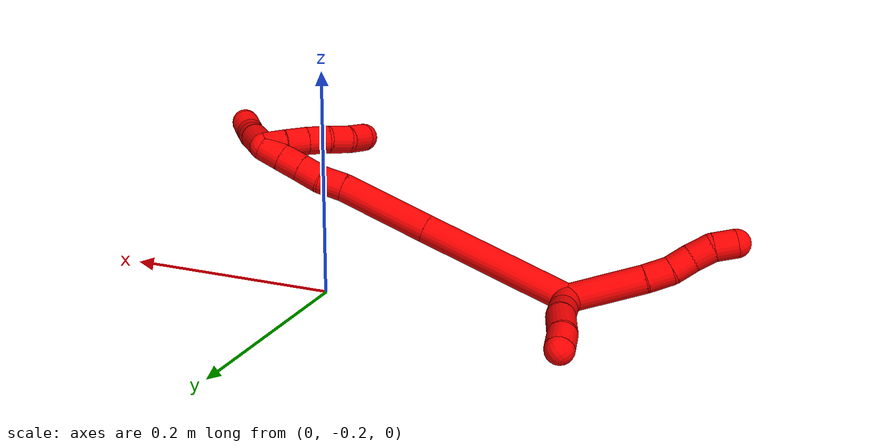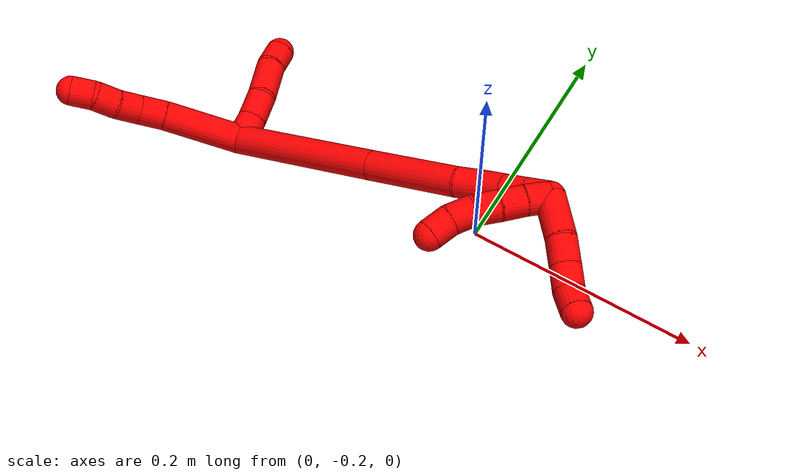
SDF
<sdf version="1.7">
 <world name="default">
  <model name="2">
   <static>0</static>
   <link name="2">
    <collision name="collision-cylinder-e_1_2_8">
     <pose>-0.029289 0.011577 0.012165 -0.760609 -1.05019 0.455183</pose>
     <geometry><cylinder><radius>0.0125</radius><length>0.067524</length></cylinder></geometry>
     <surface>
      <friction><ode><mu>1.16</mu><mu2>1.16</mu2><slip1>0</slip1><slip2>0</slip2></ode></friction>
      <contact><ode><kp>1e+06</kp><kd>1</kd><max_vel>0</max_vel><min_depth>0.001</min_depth></ode></contact>
     </surface>
    </collision>
    <visual name="visual-cylinder-e_1_2_8">
     <pose>-0.029289 0.011577 0.012165 -0.760609 -1.05019 0.455183</pose>
     <geometry><cylinder><radius>0.0125</radius><length>0.067524</length></cylinder></geometry>
     <material><ambient>1 0 0 1</ambient></material>
    </visual>
    <collision name="collision-cylinder-e_2_8_9">
     <pose>-0.06812 0.027986 0.027651 -0.96885 -1.01978 0.572415</pose>
     <geometry><cylinder><radius>0.0125</radius><length>0.022398</length></cylinder></geometry>
     <surface>
      <friction><ode><mu>1.16</mu><mu2>1.16</mu2><slip1>0</slip1><slip2>0</slip2></ode></friction>
      <contact><ode><kp>1e+06</kp><kd>1</kd><max_vel>0</max_vel><min_depth>0.001</min_depth></ode></contact>
     </surface>
    </collision>
    <visual name="visual-cylinder-e_2_8_9">
     <pose>-0.06812 0.027986 0.027651 -0.96885 -1.01978 0.572415</pose>
     <geometry><cylinder><radius>0.0125</radius><length>0.022398</length></cylinder></geometry>
     <material><ambient>1 0 0 1</ambient></material>
    </visual>
    <collision name="collision-cylinder-e_3_9_10">
     <pose>-0.086486 0.037547 0.031623 -1.43382 -1.07493 0.958204</pose>
     <geometry><cylinder><radius>0.0125</radius><length>0.020065</length></cylinder></geometry>
     <surface>
      <friction><ode><mu>1.16</mu><mu2>1.16</mu2><slip1>0</slip1><slip2>0</slip2></ode></friction>
      <contact><ode><kp>1e+06</kp><kd>1</kd><max_vel>0</max_vel><min_depth>0.001</min_depth></ode></contact>
     </surface>
    </collision>
    <visual name="visual-cylinder-e_3_9_10">
     <pose>-0.086486 0.037547 0.031623 -1.43382 -1.07493 0.958204</pose>
     <geometry><cylinder><radius>0.0125</radius><length>0.020065</length></cylinder></geometry>
     <material><ambient>1 0 0 1</ambient></material>
    </visual>
    <collision name="collision-cylinder-e_4_10_11">
     <pose>-0.104617 0.045625 0.033745 -1.15698 -1.19633 0.837359</pose>
     <geometry><cylinder><radius>0.0125</radius><length>0.020001</length></cylinder></geometry>
     <surface>
      <friction><ode><mu>1.16</mu><mu2>1.16</mu2><slip1>0</slip1><slip2>0</slip2></ode></friction>
      <contact><ode><kp>1e+06</kp><kd>1</kd><max_vel>0</max_vel><min_depth>0.001</min_depth></ode></contact>
     </surface>
    </collision>
    <visual name="visual-cylinder-e_4_10_11">
     <pose>-0.104617 0.045625 0.033745 -1.15698 -1.19633 0.837359</pose>
     <geometry><cylinder><radius>0.0125</radius><length>0.020001</length></cylinder></geometry>
     <material><ambient>1 0 0 1</ambient></material>
    </visual>
    <collision name="collision-cylinder-e_5_11_6">
     <pose>-0.121972 0.05302 0.039574 -0.748154 -0.934484 0.391035</pose>
     <geometry><cylinder><radius>0.0125</radius><length>0.020012</length></cylinder></geometry>
     <surface>
      <friction><ode><mu>1.16</mu><mu2>1.16</mu2><slip1>0</slip1><slip2>0</slip2></ode></friction>
      <contact><ode><kp>1e+06</kp><kd>1</kd><max_vel>0</max_vel><min_depth>0.001</min_depth></ode></contact>
     </surface>
    </collision>
    <visual name="visual-cylinder-e_5_11_6">
     <pose>-0.121972 0.05302 0.039574 -0.748154 -0.934484 0.391035</pose>
     <geometry><cylinder><radius>0.0125</radius><length>0.020012</length></cylinder></geometry>
     <material><ambient>1 0 0 1</ambient></material>
    </visual>
    <collision name="collision-cylinder-e_1_2_12">
     <pose>-0.00035 -0.010885 0.002594 1.33686 -0.031223 -0.024658</pose>
     <geometry><cylinder><radius>0.0125</radius><length>0.022391</length></cylinder></geometry>
     <surface>
      <friction><ode><mu>1.16</mu><mu2>1.16</mu2><slip1>0</slip1><slip2>0</slip2></ode></friction>
      <contact><ode><kp>1e+06</kp><kd>1</kd><max_vel>0</max_vel><min_depth>0.001</min_depth></ode></contact>
     </surface>
    </collision>
    <visual name="visual-cylinder-e_1_2_12">
     <pose>-0.00035 -0.010885 0.002594 1.33686 -0.031223 -0.024658</pose>
     <geometry><cylinder><radius>0.0125</radius><length>0.022391</length></cylinder></geometry>
     <material><ambient>1 0 0 1</ambient></material>
    </visual>
    <collision name="collision-cylinder-e_2_12_13">
     <pose>-0.003046 -0.033478 0.006916 1.42423 -0.195789 -0.169145</pose>
     <geometry><cylinder><radius>0.0125</radius><length>0.024129</length></cylinder></geometry>
     <surface>
      <friction><ode><mu>1.16</mu><mu2>1.16</mu2><slip1>0</slip1><slip2>0</slip2></ode></friction>
      <contact><ode><kp>1e+06</kp><kd>1</kd><max_vel>0</max_vel><min_depth>0.001</min_depth></ode></contact>
     </surface>
    </collision>
    <visual name="visual-cylinder-e_2_12_13">
     <pose>-0.003046 -0.033478 0.006916 1.42423 -0.195789 -0.169145</pose>
     <geometry><cylinder><radius>0.0125</radius><length>0.024129</length></cylinder></geometry>
     <material><ambient>1 0 0 1</ambient></material>
    </visual>
    <collision name="collision-cylinder-e_3_13_14">
     <pose>-0.008241 -0.060317 0.014646 1.19321 -0.1732 -0.11779</pose>
     <geometry><cylinder><radius>0.0125</radius><length>0.033051</length></cylinder></geometry>
     <surface>
      <friction><ode><mu>1.16</mu><mu2>1.16</mu2><slip1>0</slip1><slip2>0</slip2></ode></friction>
      <contact><ode><kp>1e+06</kp><kd>1</kd><max_vel>0</max_vel><min_depth>0.001</min_depth></ode></contact>
     </surface>
    </collision>
    <visual name="visual-cylinder-e_3_13_14">
     <pose>-0.008241 -0.060317 0.014646 1.19321 -0.1732 -0.11779</pose>
     <geometry><cylinder><radius>0.0125</radius><length>0.033051</length></cylinder></geometry>
     <material><ambient>1 0 0 1</ambient></material>
    </visual>
    <collision name="collision-cylinder-e_4_14_5">
     <pose>-0.010498 -0.084853 0.024588 1.174 0.057932 0.038544</pose>
     <geometry><cylinder><radius>0.0125</radius><length>0.020428</length></cylinder></geometry>
     <surface>
      <friction><ode><mu>1.16</mu><mu2>1.16</mu2><slip1>0</slip1><slip2>0</slip2></ode></friction>
      <contact><ode><kp>1e+06</kp><kd>1</kd><max_vel>0</max_vel><min_depth>0.001</min_depth></ode></contact>
     </surface>
    </collision>
    <visual name="visual-cylinder-e_4_14_5">
     <pose>-0.010498 -0.084853 0.024588 1.174 0.057932 0.038544</pose>
     <geometry><cylinder><radius>0.0125</radius><length>0.020428</length></cylinder></geometry>
     <material><ambient>1 0 0 1</ambient></material>
    </visual>
    <collision name="collision-cylinder-e_1_2_15">
     <pose>0.030487 -0.010421 -0.0598 2.96906 0.465449 2.44186</pose>
     <geometry><cylinder><radius>0.0125</radius><length>0.135854</length></cylinder></geometry>
     <surface>
      <friction><ode><mu>1.16</mu><mu2>1.16</mu2><slip1>0</slip1><slip2>0</slip2></ode></friction>
      <contact><ode><kp>1e+06</kp><kd>1</kd><max_vel>0</max_vel><min_depth>0.001</min_depth></ode></contact>
     </surface>
    </collision>
    <visual name="visual-cylinder-e_1_2_15">
     <pose>0.030487 -0.010421 -0.0598 2.96906 0.465449 2.44186</pose>
     <geometry><cylinder><radius>0.0125</radius><length>0.135854</length></cylinder></geometry>
     <material><ambient>1 0 0 1</ambient></material>
    </visual>
    <collision name="collision-cylinder-e_2_15_16">
     <pose>0.079 -0.027093 -0.155692 2.97012 0.457303 2.43404</pose>
     <geometry><cylinder><radius>0.0125</radius><length>0.081649</length></cylinder></geometry>
     <surface>
      <friction><ode><mu>1.16</mu><mu2>1.16</mu2><slip1>0</slip1><slip2>0</slip2></ode></friction>
      <contact><ode><kp>1e+06</kp><kd>1</kd><max_vel>0</max_vel><min_depth>0.001</min_depth></ode></contact>
     </surface>
    </collision>
    <visual name="visual-cylinder-e_2_15_16">
     <pose>0.079 -0.027093 -0.155692 2.97012 0.457303 2.43404</pose>
     <geometry><cylinder><radius>0.0125</radius><length>0.081649</length></cylinder></geometry>
     <material><ambient>1 0 0 1</ambient></material>
    </visual>
    <collision name="collision-cylinder-e_3_16_17">
     <pose>0.102786 -0.03629 -0.200801 2.82565 0.545743 2.10664</pose>
     <geometry><cylinder><radius>0.0125</radius><length>0.022196</length></cylinder></geometry>
     <surface>
      <friction><ode><mu>1.16</mu><mu2>1.16</mu2><slip1>0</slip1><slip2>0</slip2></ode></friction>
      <contact><ode><kp>1e+06</kp><kd>1</kd><max_vel>0</max_vel><min_depth>0.001</min_depth></ode></contact>
     </surface>
    </collision>
    <visual name="visual-cylinder-e_3_16_17">
     <pose>0.102786 -0.03629 -0.200801 2.82565 0.545743 2.10664</pose>
     <geometry><cylinder><radius>0.0125</radius><length>0.022196</length></cylinder></geometry>
     <material><ambient>1 0 0 1</ambient></material>
    </visual>
    <collision name="collision-cylinder-e_4_17_18">
     <pose>0.112505 -0.040586 -0.219022 2.9961 0.402359 2.45521</pose>
     <geometry><cylinder><radius>0.0125</radius><length>0.02022</length></cylinder></geometry>
     <surface>
      <friction><ode><mu>1.16</mu><mu2>1.16</mu2><slip1>0</slip1><slip2>0</slip2></ode></friction>
      <contact><ode><kp>1e+06</kp><kd>1</kd><max_vel>0</max_vel><min_depth>0.001</min_depth></ode></contact>
     </surface>
    </collision>
    <visual name="visual-cylinder-e_4_17_18">
     <pose>0.112505 -0.040586 -0.219022 2.9961 0.402359 2.45521</pose>
     <geometry><cylinder><radius>0.0125</radius><length>0.02022</length></cylinder></geometry>
     <material><ambient>1 0 0 1</ambient></material>
    </visual>
    <collision name="collision-cylinder-e_5_18_19">
     <pose>0.120439 -0.043445 -0.237304 2.9768 0.40778 2.3816</pose>
     <geometry><cylinder><radius>0.0125</radius><length>0.020048</length></cylinder></geometry>
     <surface>
      <friction><ode><mu>1.16</mu><mu2>1.16</mu2><slip1>0</slip1><slip2>0</slip2></ode></friction>
      <contact><ode><kp>1e+06</kp><kd>1</kd><max_vel>0</max_vel><min_depth>0.001</min_depth></ode></contact>
     </surface>
    </collision>
    <visual name="visual-cylinder-e_5_18_19">
     <pose>0.120439 -0.043445 -0.237304 2.9768 0.40778 2.3816</pose>
     <geometry><cylinder><radius>0.0125</radius><length>0.020048</length></cylinder></geometry>
     <material><ambient>1 0 0 1</ambient></material>
    </visual>
    <collision name="collision-cylinder-e_6_19_1">
     <pose>0.128333 -0.046492 -0.25547 2.97404 0.40194 2.35962</pose>
     <geometry><cylinder><radius>0.0125</radius><length>0.020032</length></cylinder></geometry>
     <surface>
      <friction><ode><mu>1.16</mu><mu2>1.16</mu2><slip1>0</slip1><slip2>0</slip2></ode></friction>
      <contact><ode><kp>1e+06</kp><kd>1</kd><max_vel>0</max_vel><min_depth>0.001</min_depth></ode></contact>
     </surface>
    </collision>
    <visual name="visual-cylinder-e_6_19_1">
     <pose>0.128333 -0.046492 -0.25547 2.97404 0.40194 2.35962</pose>
     <geometry><cylinder><radius>0.0125</radius><length>0.020032</length></cylinder></geometry>
     <material><ambient>1 0 0 1</ambient></material>
    </visual>
    <collision name="collision-cylinder-e_1_1_20">
     <pose>0.140817 -0.034866 -0.27409 -2.19753 0.485081 -0.902542</pose>
     <geometry><cylinder><radius>0.0125</radius><length>0.036741</length></cylinder></geometry>
     <surface>
      <friction><ode><mu>1.16</mu><mu2>1.16</mu2><slip1>0</slip1><slip2>0</slip2></ode></friction>
      <contact><ode><kp>1e+06</kp><kd>1</kd><max_vel>0</max_vel><min_depth>0.001</min_depth></ode></contact>
     </surface>
    </collision>
    <visual name="visual-cylinder-e_1_1_20">
     <pose>0.140817 -0.034866 -0.27409 -2.19753 0.485081 -0.902542</pose>
     <geometry><cylinder><radius>0.0125</radius><length>0.036741</length></cylinder></geometry>
     <material><ambient>1 0 0 1</ambient></material>
    </visual>
    <collision name="collision-cylinder-e_2_20_21">
     <pose>0.155197 -0.012904 -0.287938 -2.02684 0.535359 -0.829039</pose>
     <geometry><cylinder><radius>0.0125</radius><length>0.022793</length></cylinder></geometry>
     <surface>
      <friction><ode><mu>1.16</mu><mu2>1.16</mu2><slip1>0</slip1><slip2>0</slip2></ode></friction>
      <contact><ode><kp>1e+06</kp><kd>1</kd><max_vel>0</max_vel><min_depth>0.001</min_depth></ode></contact>
     </surface>
    </collision>
    <visual name="visual-cylinder-e_2_20_21">
     <pose>0.155197 -0.012904 -0.287938 -2.02684 0.535359 -0.829039</pose>
     <geometry><cylinder><radius>0.0125</radius><length>0.022793</length></cylinder></geometry>
     <material><ambient>1 0 0 1</ambient></material>
    </visual>
    <collision name="collision-cylinder-e_3_21_22">
     <pose>0.165589 0.003918 -0.296574 -2.06474 0.465736 -0.755966</pose>
     <geometry><cylinder><radius>0.0125</radius><length>0.020392</length></cylinder></geometry>
     <surface>
      <friction><ode><mu>1.16</mu><mu2>1.16</mu2><slip1>0</slip1><slip2>0</slip2></ode></friction>
      <contact><ode><kp>1e+06</kp><kd>1</kd><max_vel>0</max_vel><min_depth>0.001</min_depth></ode></contact>
     </surface>
    </collision>
    <visual name="visual-cylinder-e_3_21_22">
     <pose>0.165589 0.003918 -0.296574 -2.06474 0.465736 -0.755966</pose>
     <geometry><cylinder><radius>0.0125</radius><length>0.020392</length></cylinder></geometry>
     <material><ambient>1 0 0 1</ambient></material>
    </visual>
    <collision name="collision-cylinder-e_4_22_4">
     <pose>0.17325 0.018421 -0.307909 -2.39566 0.312123 -0.764659</pose>
     <geometry><cylinder><radius>0.0125</radius><length>0.020075</length></cylinder></geometry>
     <surface>
      <friction><ode><mu>1.16</mu><mu2>1.16</mu2><slip1>0</slip1><slip2>0</slip2></ode></friction>
      <contact><ode><kp>1e+06</kp><kd>1</kd><max_vel>0</max_vel><min_depth>0.001</min_depth></ode></contact>
     </surface>
    </collision>
    <visual name="visual-cylinder-e_4_22_4">
     <pose>0.17325 0.018421 -0.307909 -2.39566 0.312123 -0.764659</pose>
     <geometry><cylinder><radius>0.0125</radius><length>0.020075</length></cylinder></geometry>
     <material><ambient>1 0 0 1</ambient></material>
    </visual>
    <collision name="collision-cylinder-e_1_1_23">
     <pose>0.126081 -0.041108 -0.260814 -1.07483 -0.665018 0.405915</pose>
     <geometry><cylinder><radius>0.0125</radius><length>0.02</length></cylinder></geometry>
     <surface>
      <friction><ode><mu>1.16</mu><mu2>1.16</mu2><slip1>0</slip1><slip2>0</slip2></ode></friction>
      <contact><ode><kp>1e+06</kp><kd>1</kd><max_vel>0</max_vel><min_depth>0.001</min_depth></ode></contact>
     </surface>
    </collision>
    <visual name="visual-cylinder-e_1_1_23">
     <pose>0.126081 -0.041108 -0.260814 -1.07483 -0.665018 0.405915</pose>
     <geometry><cylinder><radius>0.0125</radius><length>0.02</length></cylinder></geometry>
     <material><ambient>1 0 0 1</ambient></material>
    </visual>
    <collision name="collision-cylinder-e_2_23_24">
     <pose>0.114275 -0.026843 -0.253285 -1.09494 -0.598552 0.371848</pose>
     <geometry><cylinder><radius>0.0125</radius><length>0.02</length></cylinder></geometry>
     <surface>
      <friction><ode><mu>1.16</mu><mu2>1.16</mu2><slip1>0</slip1><slip2>0</slip2></ode></friction>
      <contact><ode><kp>1e+06</kp><kd>1</kd><max_vel>0</max_vel><min_depth>0.001</min_depth></ode></contact>
     </surface>
    </collision>
    <visual name="visual-cylinder-e_2_23_24">
     <pose>0.114275 -0.026843 -0.253285 -1.09494 -0.598552 0.371848</pose>
     <geometry><cylinder><radius>0.0125</radius><length>0.02</length></cylinder></geometry>
     <material><ambient>1 0 0 1</ambient></material>
    </visual>
    <collision name="collision-cylinder-e_3_24_25">
     <pose>0.102955 -0.01252 -0.245147 -1.01317 -0.604764 0.342793</pose>
     <geometry><cylinder><radius>0.0125</radius><length>0.02</length></cylinder></geometry>
     <surface>
      <friction><ode><mu>1.16</mu><mu2>1.16</mu2><slip1>0</slip1><slip2>0</slip2></ode></friction>
      <contact><ode><kp>1e+06</kp><kd>1</kd><max_vel>0</max_vel><min_depth>0.001</min_depth></ode></contact>
     </surface>
    </collision>
    <visual name="visual-cylinder-e_3_24_25">
     <pose>0.102955 -0.01252 -0.245147 -1.01317 -0.604764 0.342793</pose>
     <geometry><cylinder><radius>0.0125</radius><length>0.02</length></cylinder></geometry>
     <material><ambient>1 0 0 1</ambient></material>
    </visual>
    <collision name="collision-cylinder-e_4_25_26">
     <pose>0.09328 0.002665 -0.236699 -1.10782 -0.410431 0.256067</pose>
     <geometry><cylinder><radius>0.0125</radius><length>0.02</length></cylinder></geometry>
     <surface>
      <friction><ode><mu>1.16</mu><mu2>1.16</mu2><slip1>0</slip1><slip2>0</slip2></ode></friction>
      <contact><ode><kp>1e+06</kp><kd>1</kd><max_vel>0</max_vel><min_depth>0.001</min_depth></ode></contact>
     </surface>
    </collision>
    <visual name="visual-cylinder-e_4_25_26">
     <pose>0.09328 0.002665 -0.236699 -1.10782 -0.410431 0.256067</pose>
     <geometry><cylinder><radius>0.0125</radius><length>0.02</length></cylinder></geometry>
     <material><ambient>1 0 0 1</ambient></material>
    </visual>
    <collision name="collision-cylinder-e_5_26_3">
     <pose>0.086805 0.020349 -0.230612 -1.36373 -0.251055 0.20416</pose>
     <geometry><cylinder><radius>0.0125</radius><length>0.02</length></cylinder></geometry>
     <surface>
      <friction><ode><mu>1.16</mu><mu2>1.16</mu2><slip1>0</slip1><slip2>0</slip2></ode></friction>
      <contact><ode><kp>1e+06</kp><kd>1</kd><max_vel>0</max_vel><min_depth>0.001</min_depth></ode></contact>
     </surface>
    </collision>
    <visual name="visual-cylinder-e_5_26_3">
     <pose>0.086805 0.020349 -0.230612 -1.36373 -0.251055 0.20416</pose>
     <geometry><cylinder><radius>0.0125</radius><length>0.02</length></cylinder></geometry>
     <material><ambient>1 0 0 1</ambient></material>
    </visual>
    <collision name="collision-sphere-3">
     <pose>0.084321 0.029828 -0.22862 0 -0 0</pose>
     <geometry><sphere><radius>0.0125</radius></sphere></geometry>
     <surface>
      <friction><ode><mu>1.16</mu><mu2>1.16</mu2><slip1>0</slip1><slip2>0</slip2></ode></friction>
      <contact><ode><kp>1e+06</kp><kd>1</kd><max_vel>0</max_vel><min_depth>0.001</min_depth></ode></contact>
     </surface>
    </collision>
    <visual name="visual-sphere-3">
     <pose>0.084321 0.029828 -0.22862 0 -0 0</pose>
     <geometry><sphere><radius>0.0125</radius></sphere></geometry>
     <material><ambient>1 0 0 1</ambient></material>
    </visual>
    <collision name="collision-sphere-26">
     <pose>0.089289 0.010869 -0.232603 0 -0 0</pose>
     <geometry><sphere><radius>0.0125</radius></sphere></geometry>
     <surface>
      <friction><ode><mu>1.16</mu><mu2>1.16</mu2><slip1>0</slip1><slip2>0</slip2></ode></friction>
      <contact><ode><kp>1e+06</kp><kd>1</kd><max_vel>0</max_vel><min_depth>0.001</min_depth></ode></contact>
     </surface>
    </collision>
    <visual name="visual-sphere-26">
     <pose>0.089289 0.010869 -0.232603 0 -0 0</pose>
     <geometry><sphere><radius>0.0125</radius></sphere></geometry>
     <material><ambient>1 0 0 1</ambient></material>
    </visual>
    <collision name="collision-sphere-25">
     <pose>0.09727 -0.005539 -0.240794 0 -0 0</pose>
     <geometry><sphere><radius>0.0125</radius></sphere></geometry>
     <surface>
      <friction><ode><mu>1.16</mu><mu2>1.16</mu2><slip1>0</slip1><slip2>0</slip2></ode></friction>
      <contact><ode><kp>1e+06</kp><kd>1</kd><max_vel>0</max_vel><min_depth>0.001</min_depth></ode></contact>
     </surface>
    </collision>
    <visual name="visual-sphere-25">
     <pose>0.09727 -0.005539 -0.240794 0 -0 0</pose>
     <geometry><sphere><radius>0.0125</radius></sphere></geometry>
     <material><ambient>1 0 0 1</ambient></material>
    </visual>
    <collision name="collision-sphere-24">
     <pose>0.108641 -0.0195 -0.2495 0 -0 0</pose>
     <geometry><sphere><radius>0.0125</radius></sphere></geometry>
     <surface>
      <friction><ode><mu>1.16</mu><mu2>1.16</mu2><slip1>0</slip1><slip2>0</slip2></ode></friction>
      <contact><ode><kp>1e+06</kp><kd>1</kd><max_vel>0</max_vel><min_depth>0.001</min_depth></ode></contact>
     </surface>
    </collision>
    <visual name="visual-sphere-24">
     <pose>0.108641 -0.0195 -0.2495 0 -0 0</pose>
     <geometry><sphere><radius>0.0125</radius></sphere></geometry>
     <material><ambient>1 0 0 1</ambient></material>
    </visual>
    <collision name="collision-sphere-23">
     <pose>0.11991 -0.034187 -0.257069 0 -0 0</pose>
     <geometry><sphere><radius>0.0125</radius></sphere></geometry>
     <surface>
      <friction><ode><mu>1.16</mu><mu2>1.16</mu2><slip1>0</slip1><slip2>0</slip2></ode></friction>
      <contact><ode><kp>1e+06</kp><kd>1</kd><max_vel>0</max_vel><min_depth>0.001</min_depth></ode></contact>
     </surface>
    </collision>
    <visual name="visual-sphere-23">
     <pose>0.11991 -0.034187 -0.257069 0 -0 0</pose>
     <geometry><sphere><radius>0.0125</radius></sphere></geometry>
     <material><ambient>1 0 0 1</ambient></material>
    </visual>
    <collision name="collision-sphere-4">
     <pose>0.176333 0.024904 -0.314925 0 -0 0</pose>
     <geometry><sphere><radius>0.0125</radius></sphere></geometry>
     <surface>
      <friction><ode><mu>1.16</mu><mu2>1.16</mu2><slip1>0</slip1><slip2>0</slip2></ode></friction>
      <contact><ode><kp>1e+06</kp><kd>1</kd><max_vel>0</max_vel><min_depth>0.001</min_depth></ode></contact>
     </surface>
    </collision>
    <visual name="visual-sphere-4">
     <pose>0.176333 0.024904 -0.314925 0 -0 0</pose>
     <geometry><sphere><radius>0.0125</radius></sphere></geometry>
     <material><ambient>1 0 0 1</ambient></material>
    </visual>
    <collision name="collision-sphere-22">
     <pose>0.170168 0.011938 -0.300893 0 -0 0</pose>
     <geometry><sphere><radius>0.0125</radius></sphere></geometry>
     <surface>
      <friction><ode><mu>1.16</mu><mu2>1.16</mu2><slip1>0</slip1><slip2>0</slip2></ode></friction>
      <contact><ode><kp>1e+06</kp><kd>1</kd><max_vel>0</max_vel><min_depth>0.001</min_depth></ode></contact>
     </surface>
    </collision>
    <visual name="visual-sphere-22">
     <pose>0.170168 0.011938 -0.300893 0 -0 0</pose>
     <geometry><sphere><radius>0.0125</radius></sphere></geometry>
     <material><ambient>1 0 0 1</ambient></material>
    </visual>
    <collision name="collision-sphere-21">
     <pose>0.161011 -0.004103 -0.292255 0 -0 0</pose>
     <geometry><sphere><radius>0.0125</radius></sphere></geometry>
     <surface>
      <friction><ode><mu>1.16</mu><mu2>1.16</mu2><slip1>0</slip1><slip2>0</slip2></ode></friction>
      <contact><ode><kp>1e+06</kp><kd>1</kd><max_vel>0</max_vel><min_depth>0.001</min_depth></ode></contact>
     </surface>
    </collision>
    <visual name="visual-sphere-21">
     <pose>0.161011 -0.004103 -0.292255 0 -0 0</pose>
     <geometry><sphere><radius>0.0125</radius></sphere></geometry>
     <material><ambient>1 0 0 1</ambient></material>
    </visual>
    <collision name="collision-sphere-20">
     <pose>0.149383 -0.021704 -0.283622 0 -0 0</pose>
     <geometry><sphere><radius>0.0125</radius></sphere></geometry>
     <surface>
      <friction><ode><mu>1.16</mu><mu2>1.16</mu2><slip1>0</slip1><slip2>0</slip2></ode></friction>
      <contact><ode><kp>1e+06</kp><kd>1</kd><max_vel>0</max_vel><min_depth>0.001</min_depth></ode></contact>
     </surface>
    </collision>
    <visual name="visual-sphere-20">
     <pose>0.149383 -0.021704 -0.283622 0 -0 0</pose>
     <geometry><sphere><radius>0.0125</radius></sphere></geometry>
     <material><ambient>1 0 0 1</ambient></material>
    </visual>
    <collision name="collision-sphere-6">
     <pose>-0.13002 0.057064 0.043932 0 -0 0</pose>
     <geometry><sphere><radius>0.0125</radius></sphere></geometry>
     <surface>
      <friction><ode><mu>1.16</mu><mu2>1.16</mu2><slip1>0</slip1><slip2>0</slip2></ode></friction>
      <contact><ode><kp>1e+06</kp><kd>1</kd><max_vel>0</max_vel><min_depth>0.001</min_depth></ode></contact>
     </surface>
    </collision>
    <visual name="visual-sphere-6">
     <pose>-0.13002 0.057064 0.043932 0 -0 0</pose>
     <geometry><sphere><radius>0.0125</radius></sphere></geometry>
     <material><ambient>1 0 0 1</ambient></material>
    </visual>
    <collision name="collision-sphere-11">
     <pose>-0.113925 0.048975 0.035216 0 -0 0</pose>
     <geometry><sphere><radius>0.0125</radius></sphere></geometry>
     <surface>
      <friction><ode><mu>1.16</mu><mu2>1.16</mu2><slip1>0</slip1><slip2>0</slip2></ode></friction>
      <contact><ode><kp>1e+06</kp><kd>1</kd><max_vel>0</max_vel><min_depth>0.001</min_depth></ode></contact>
     </surface>
    </collision>
    <visual name="visual-sphere-11">
     <pose>-0.113925 0.048975 0.035216 0 -0 0</pose>
     <geometry><sphere><radius>0.0125</radius></sphere></geometry>
     <material><ambient>1 0 0 1</ambient></material>
    </visual>
    <collision name="collision-sphere-10">
     <pose>-0.09531 0.042276 0.032274 0 -0 0</pose>
     <geometry><sphere><radius>0.0125</radius></sphere></geometry>
     <surface>
      <friction><ode><mu>1.16</mu><mu2>1.16</mu2><slip1>0</slip1><slip2>0</slip2></ode></friction>
      <contact><ode><kp>1e+06</kp><kd>1</kd><max_vel>0</max_vel><min_depth>0.001</min_depth></ode></contact>
     </surface>
    </collision>
    <visual name="visual-sphere-10">
     <pose>-0.09531 0.042276 0.032274 0 -0 0</pose>
     <geometry><sphere><radius>0.0125</radius></sphere></geometry>
     <material><ambient>1 0 0 1</ambient></material>
    </visual>
    <collision name="collision-sphere-9">
     <pose>-0.077661 0.032819 0.030971 0 -0 0</pose>
     <geometry><sphere><radius>0.0125</radius></sphere></geometry>
     <surface>
      <friction><ode><mu>1.16</mu><mu2>1.16</mu2><slip1>0</slip1><slip2>0</slip2></ode></friction>
      <contact><ode><kp>1e+06</kp><kd>1</kd><max_vel>0</max_vel><min_depth>0.001</min_depth></ode></contact>
     </surface>
    </collision>
    <visual name="visual-sphere-9">
     <pose>-0.077661 0.032819 0.030971 0 -0 0</pose>
     <geometry><sphere><radius>0.0125</radius></sphere></geometry>
     <material><ambient>1 0 0 1</ambient></material>
    </visual>
    <collision name="collision-sphere-2">
     <geometry><sphere><radius>0.0125</radius></sphere></geometry>
     <surface>
      <friction><ode><mu>1.16</mu><mu2>1.16</mu2><slip1>0</slip1><slip2>0</slip2></ode></friction>
      <contact><ode><kp>1e+06</kp><kd>1</kd><max_vel>0</max_vel><min_depth>0.001</min_depth></ode></contact>
     </surface>
    </collision>
    <visual name="visual-sphere-2">
     <geometry><sphere><radius>0.0125</radius></sphere></geometry>
     <material><ambient>1 0 0 1</ambient></material>
    </visual>
    <collision name="collision-sphere-19">
     <pose>0.124415 -0.044954 -0.246381 0 -0 0</pose>
     <geometry><sphere><radius>0.0125</radius></sphere></geometry>
     <surface>
      <friction><ode><mu>1.16</mu><mu2>1.16</mu2><slip1>0</slip1><slip2>0</slip2></ode></friction>
      <contact><ode><kp>1e+06</kp><kd>1</kd><max_vel>0</max_vel><min_depth>0.001</min_depth></ode></contact>
     </surface>
    </collision>
    <visual name="visual-sphere-19">
     <pose>0.124415 -0.044954 -0.246381 0 -0 0</pose>
     <geometry><sphere><radius>0.0125</radius></sphere></geometry>
     <material><ambient>1 0 0 1</ambient></material>
    </visual>
    <collision name="collision-sphere-8">
     <pose>-0.058578 0.023153 0.02433 0 -0 0</pose>
     <geometry><sphere><radius>0.0125</radius></sphere></geometry>
     <surface>
      <friction><ode><mu>1.16</mu><mu2>1.16</mu2><slip1>0</slip1><slip2>0</slip2></ode></friction>
      <contact><ode><kp>1e+06</kp><kd>1</kd><max_vel>0</max_vel><min_depth>0.001</min_depth></ode></contact>
     </surface>
    </collision>
    <visual name="visual-sphere-8">
     <pose>-0.058578 0.023153 0.02433 0 -0 0</pose>
     <geometry><sphere><radius>0.0125</radius></sphere></geometry>
     <material><ambient>1 0 0 1</ambient></material>
    </visual>
    <collision name="collision-sphere-12">
     <pose>-0.000699 -0.02177 0.005188 0 -0 0</pose>
     <geometry><sphere><radius>0.0125</radius></sphere></geometry>
     <surface>
      <friction><ode><mu>1.16</mu><mu2>1.16</mu2><slip1>0</slip1><slip2>0</slip2></ode></friction>
      <contact><ode><kp>1e+06</kp><kd>1</kd><max_vel>0</max_vel><min_depth>0.001</min_depth></ode></contact>
     </surface>
    </collision>
    <visual name="visual-sphere-12">
     <pose>-0.000699 -0.02177 0.005188 0 -0 0</pose>
     <geometry><sphere><radius>0.0125</radius></sphere></geometry>
     <material><ambient>1 0 0 1</ambient></material>
    </visual>
    <collision name="collision-sphere-13">
     <pose>-0.005393 -0.045185 0.008644 0 -0 0</pose>
     <geometry><sphere><radius>0.0125</radius></sphere></geometry>
     <surface>
      <friction><ode><mu>1.16</mu><mu2>1.16</mu2><slip1>0</slip1><slip2>0</slip2></ode></friction>
      <contact><ode><kp>1e+06</kp><kd>1</kd><max_vel>0</max_vel><min_depth>0.001</min_depth></ode></contact>
     </surface>
    </collision>
    <visual name="visual-sphere-13">
     <pose>-0.005393 -0.045185 0.008644 0 -0 0</pose>
     <geometry><sphere><radius>0.0125</radius></sphere></geometry>
     <material><ambient>1 0 0 1</ambient></material>
    </visual>
    <collision name="collision-sphere-14">
     <pose>-0.011089 -0.075448 0.020648 0 -0 0</pose>
     <geometry><sphere><radius>0.0125</radius></sphere></geometry>
     <surface>
      <friction><ode><mu>1.16</mu><mu2>1.16</mu2><slip1>0</slip1><slip2>0</slip2></ode></friction>
      <contact><ode><kp>1e+06</kp><kd>1</kd><max_vel>0</max_vel><min_depth>0.001</min_depth></ode></contact>
     </surface>
    </collision>
    <visual name="visual-sphere-14">
     <pose>-0.011089 -0.075448 0.020648 0 -0 0</pose>
     <geometry><sphere><radius>0.0125</radius></sphere></geometry>
     <material><ambient>1 0 0 1</ambient></material>
    </visual>
    <collision name="collision-sphere-5">
     <pose>-0.009906 -0.094258 0.028529 0 -0 0</pose>
     <geometry><sphere><radius>0.0125</radius></sphere></geometry>
     <surface>
      <friction><ode><mu>1.16</mu><mu2>1.16</mu2><slip1>0</slip1><slip2>0</slip2></ode></friction>
      <contact><ode><kp>1e+06</kp><kd>1</kd><max_vel>0</max_vel><min_depth>0.001</min_depth></ode></contact>
     </surface>
    </collision>
    <visual name="visual-sphere-5">
     <pose>-0.009906 -0.094258 0.028529 0 -0 0</pose>
     <geometry><sphere><radius>0.0125</radius></sphere></geometry>
     <material><ambient>1 0 0 1</ambient></material>
    </visual>
    <collision name="collision-sphere-15">
     <pose>0.060975 -0.020843 -0.1196 0 -0 0</pose>
     <geometry><sphere><radius>0.0125</radius></sphere></geometry>
     <surface>
      <friction><ode><mu>1.16</mu><mu2>1.16</mu2><slip1>0</slip1><slip2>0</slip2></ode></friction>
      <contact><ode><kp>1e+06</kp><kd>1</kd><max_vel>0</max_vel><min_depth>0.001</min_depth></ode></contact>
     </surface>
    </collision>
    <visual name="visual-sphere-15">
     <pose>0.060975 -0.020843 -0.1196 0 -0 0</pose>
     <geometry><sphere><radius>0.0125</radius></sphere></geometry>
     <material><ambient>1 0 0 1</ambient></material>
    </visual>
    <collision name="collision-sphere-16">
     <pose>0.097025 -0.033343 -0.191785 0 -0 0</pose>
     <geometry><sphere><radius>0.0125</radius></sphere></geometry>
     <surface>
      <friction><ode><mu>1.16</mu><mu2>1.16</mu2><slip1>0</slip1><slip2>0</slip2></ode></friction>
      <contact><ode><kp>1e+06</kp><kd>1</kd><max_vel>0</max_vel><min_depth>0.001</min_depth></ode></contact>
     </surface>
    </collision>
    <visual name="visual-sphere-16">
     <pose>0.097025 -0.033343 -0.191785 0 -0 0</pose>
     <geometry><sphere><radius>0.0125</radius></sphere></geometry>
     <material><ambient>1 0 0 1</ambient></material>
    </visual>
    <collision name="collision-sphere-17">
     <pose>0.108546 -0.039238 -0.209817 0 -0 0</pose>
     <geometry><sphere><radius>0.0125</radius></sphere></geometry>
     <surface>
      <friction><ode><mu>1.16</mu><mu2>1.16</mu2><slip1>0</slip1><slip2>0</slip2></ode></friction>
      <contact><ode><kp>1e+06</kp><kd>1</kd><max_vel>0</max_vel><min_depth>0.001</min_depth></ode></contact>
     </surface>
    </collision>
    <visual name="visual-sphere-17">
     <pose>0.108546 -0.039238 -0.209817 0 -0 0</pose>
     <geometry><sphere><radius>0.0125</radius></sphere></geometry>
     <material><ambient>1 0 0 1</ambient></material>
    </visual>
    <collision name="collision-sphere-18">
     <pose>0.116464 -0.041935 -0.228226 0 -0 0</pose>
     <geometry><sphere><radius>0.0125</radius></sphere></geometry>
     <surface>
      <friction><ode><mu>1.16</mu><mu2>1.16</mu2><slip1>0</slip1><slip2>0</slip2></ode></friction>
      <contact><ode><kp>1e+06</kp><kd>1</kd><max_vel>0</max_vel><min_depth>0.001</min_depth></ode></contact>
     </surface>
    </collision>
    <visual name="visual-sphere-18">
     <pose>0.116464 -0.041935 -0.228226 0 -0 0</pose>
     <geometry><sphere><radius>0.0125</radius></sphere></geometry>
     <material><ambient>1 0 0 1</ambient></material>
    </visual>
    <collision name="collision-sphere-1">
     <pose>0.132251 -0.048029 -0.264559 0 -0 0</pose>
     <geometry><sphere><radius>0.0125</radius></sphere></geometry>
     <surface>
      <friction><ode><mu>1.16</mu><mu2>1.16</mu2><slip1>0</slip1><slip2>0</slip2></ode></friction>
      <contact><ode><kp>1e+06</kp><kd>1</kd><max_vel>0</max_vel><min_depth>0.001</min_depth></ode></contact>
     </surface>
    </collision>
    <visual name="visual-sphere-1">
     <pose>0.132251 -0.048029 -0.264559 0 -0 0</pose>
     <geometry><sphere><radius>0.0125</radius></sphere></geometry>
     <material><ambient>1 0 0 1</ambient></material>
    </visual>
    <inertial>
     <pose>0.047769 -0.013299 -0.117649 0 -0 0</pose>
     <mass>0.75</mass>
     <inertia><ixx>1e-05</ixx><ixy>0</ixy><ixz>0</ixz><iyy>0.000415</iyy><iyz>0</iyz><izz>-8.1e-05</izz></inertia>
    </inertial>
   </link>
   <pose>-0.214232 -0.230677 0.015744 -2.99747 0.735654 0.051192</pose>
  </model>
 </world>
</sdf>
